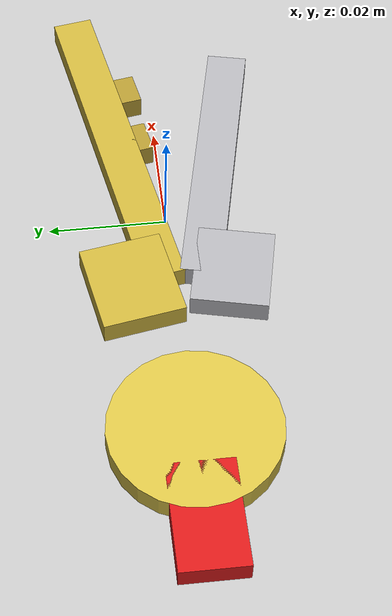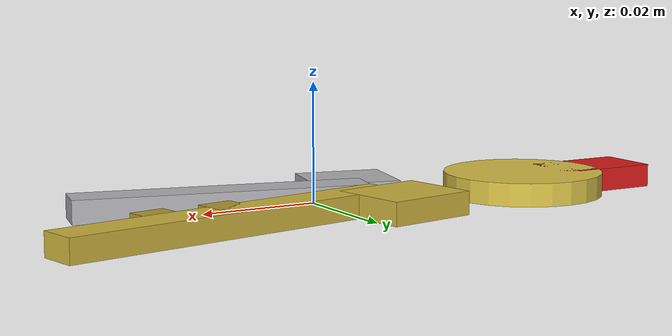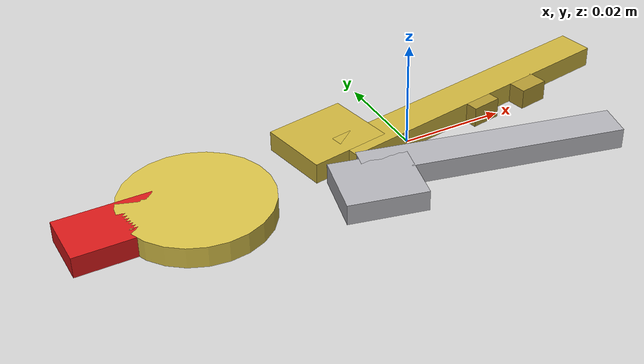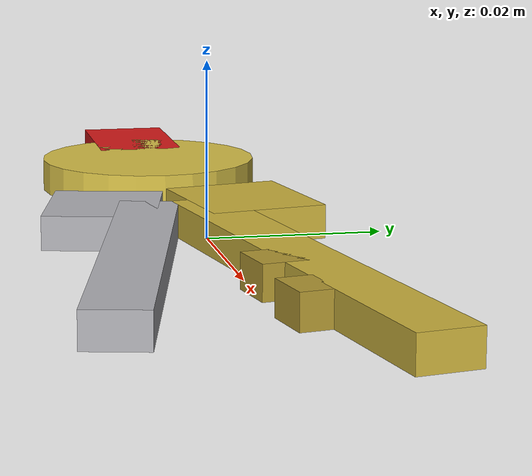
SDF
<?xml version="1.0"?>
<!-- Llavero tendido en el suelo: anilla dorada + 2 llaves + llavero rojo.
     Centro del modelo a z≈0.003 (grosor total 0.005 m). -->
<sdf version="1.8">
  <model name="keys">
    <static>true</static>
    <link name="link">
      <collision name="c">
        <geometry><box><size>0.13 0.07 0.005</size></box></geometry>
      </collision>

      <!-- Anilla del llavero (dorada) -->
      <visual name="ring">
        <pose>-0.042 0 0 0 0 0</pose>
        <geometry><cylinder><radius>0.014</radius><length>0.004</length></cylinder></geometry>
        <material>
          <ambient>0.62 0.57 0.18 1</ambient>
          <diffuse>0.85 0.76 0.28 1</diffuse>
          <specular>0.85 0.80 0.45 1</specular>
        </material>
      </visual>

      <!-- Llave 1 — eje largo (dorada) -->
      <visual name="key1_shaft">
        <pose>0.018 0.007 0 0 0 0.18</pose>
        <geometry><box><size>0.062 0.007 0.004</size></box></geometry>
        <material>
          <ambient>0.58 0.53 0.16 1</ambient>
          <diffuse>0.80 0.70 0.24 1</diffuse>
          <specular>0.85 0.80 0.45 1</specular>
        </material>
      </visual>
      <visual name="key1_head">
        <pose>-0.013 0.007 0 0 0 0.18</pose>
        <geometry><box><size>0.016 0.014 0.004</size></box></geometry>
        <material>
          <ambient>0.58 0.53 0.16 1</ambient>
          <diffuse>0.80 0.70 0.24 1</diffuse>
          <specular>0.85 0.80 0.45 1</specular>
        </material>
      </visual>
      <!-- Dientes de la llave 1 (3 muescas) -->
      <visual name="key1_tooth1">
        <pose>0.030 0.004 0 0 0 0.18</pose>
        <geometry><box><size>0.006 0.004 0.004</size></box></geometry>
        <material><ambient>0.50 0.45 0.12 1</ambient><diffuse>0.70 0.60 0.20 1</diffuse></material>
      </visual>
      <visual name="key1_tooth2">
        <pose>0.018 0.004 0 0 0 0.18</pose>
        <geometry><box><size>0.006 0.006 0.004</size></box></geometry>
        <material><ambient>0.50 0.45 0.12 1</ambient><diffuse>0.70 0.60 0.20 1</diffuse></material>
      </visual>

      <!-- Llave 2 — más corta (plateada) -->
      <visual name="key2_shaft">
        <pose>0.012 -0.010 0 0 0 -0.22</pose>
        <geometry><box><size>0.050 0.007 0.004</size></box></geometry>
        <material>
          <ambient>0.52 0.52 0.52 1</ambient>
          <diffuse>0.70 0.70 0.72 1</diffuse>
          <specular>0.90 0.90 0.90 1</specular>
        </material>
      </visual>
      <visual name="key2_head">
        <pose>-0.012 -0.010 0 0 0 -0.22</pose>
        <geometry><box><size>0.015 0.013 0.004</size></box></geometry>
        <material>
          <ambient>0.52 0.52 0.52 1</ambient>
          <diffuse>0.70 0.70 0.72 1</diffuse>
          <specular>0.90 0.90 0.90 1</specular>
        </material>
      </visual>

      <!-- Llavero de identificación (tag rojo) -->
      <visual name="tag">
        <pose>-0.057 0 0 0 0 0</pose>
        <geometry><box><size>0.018 0.011 0.004</size></box></geometry>
        <material>
          <ambient>0.62 0.06 0.06 1</ambient>
          <diffuse>0.85 0.10 0.10 1</diffuse>
        </material>
      </visual>
    </link>
  </model>
</sdf>
